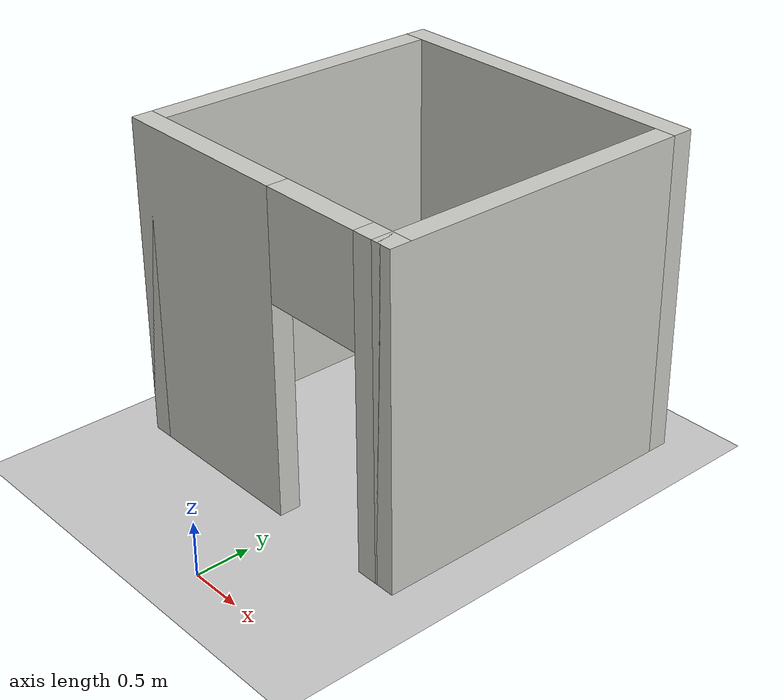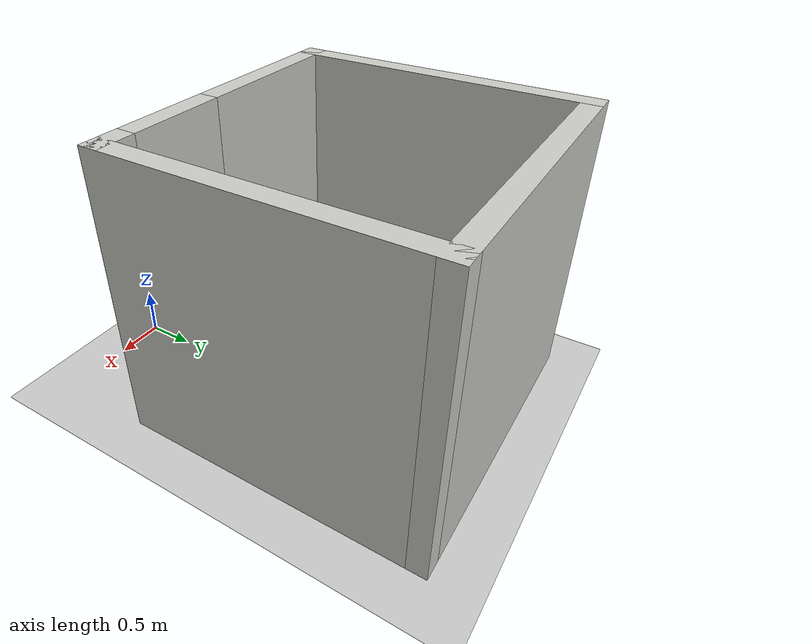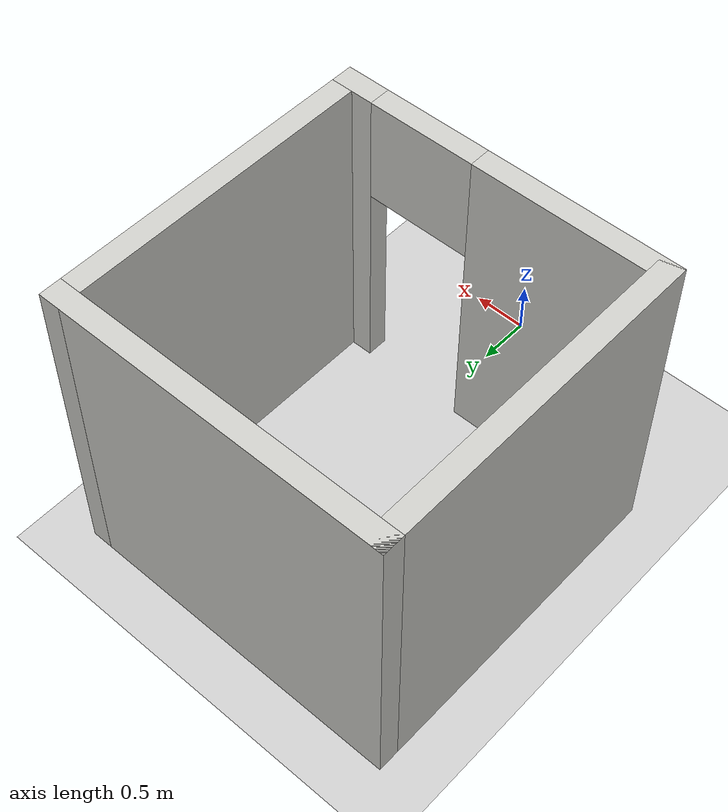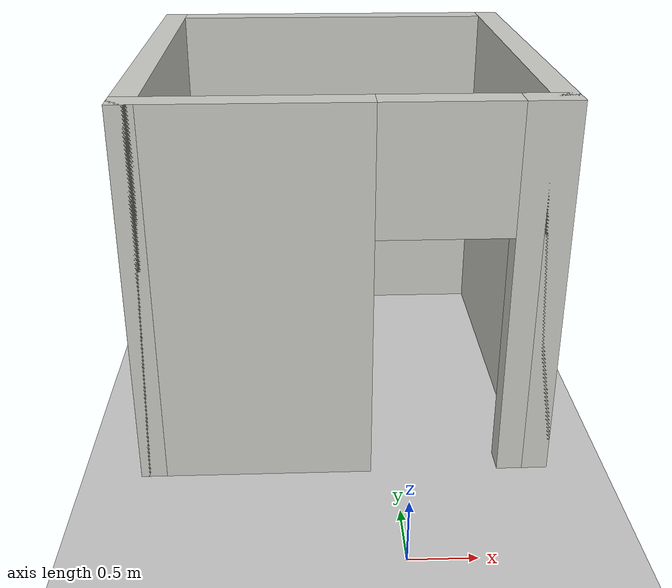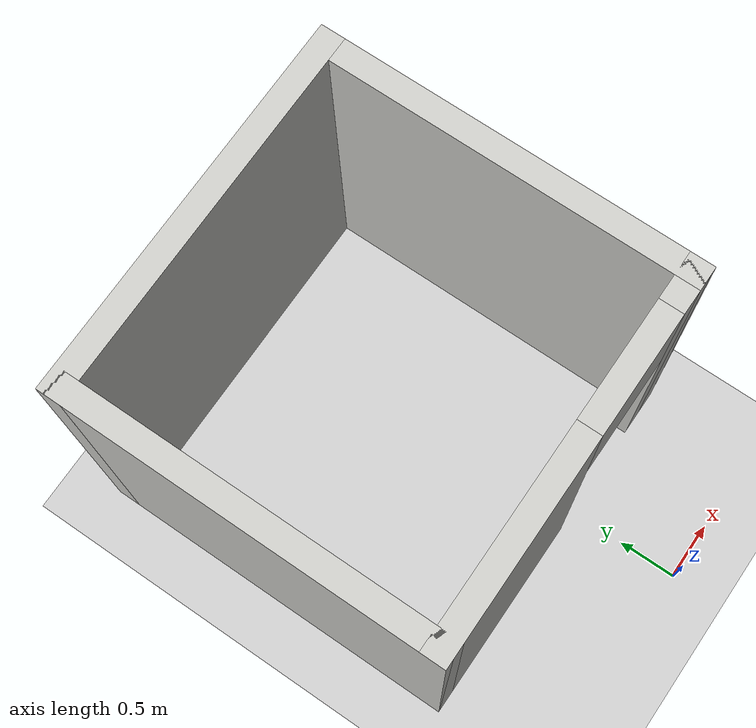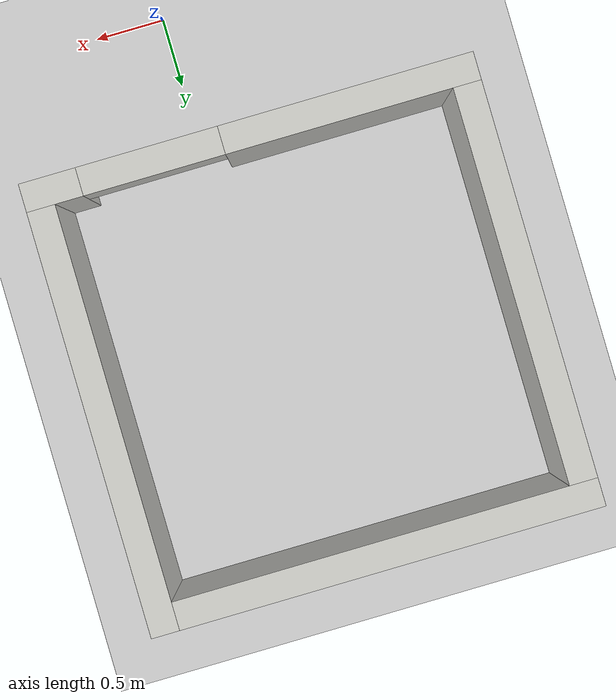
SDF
<sdf version="1.6">
 <world name="default">
  <light name="sun" type="directional">
   <pose>0 0 10 0 -0 0</pose>
   <diffuse>0.8 0.8 0.8 1</diffuse>
   <specular>0.2 0.2 0.2 1</specular>
   <attenuation>
    <range>1000</range>
    <constant>0.9</constant>
    <linear>0.01</linear>
    <quadratic>0.001</quadratic>
   </attenuation>
   <direction>-0.5 0.1 -0.9</direction>
  </light>
  <model name="ground_plane">
   <static>1</static>
   <link name="link">
    <collision name="collision">
     <geometry><plane><normal>0 0 1</normal><size>100 100</size></plane></geometry>
     <surface>
      <contact><collide_bitmask>65535</collide_bitmask></contact>
      <friction><ode><mu>100</mu><mu2>50</mu2></ode></friction>
     </surface>
    </collision>
    <visual name="visual">
     <cast_shadows>0</cast_shadows>
     <geometry><plane><normal>0 0 1</normal><size>100 100</size></plane></geometry>
     <material>
      <script><uri>file://media/materials/scripts/gazebo.material</uri><name>Gazebo/Grey</name></script>
     </material>
    </visual>
   </link>
  </model>
  <gravity>0 0 -9.8</gravity>
  <magnetic_field>6e-06 2.3e-05 -4.2e-05</magnetic_field>
  <atmosphere type="adiabatic"/>
  <physics name="default_physics" default="0" type="ode">
   <max_step_size>0.001</max_step_size>
   <real_time_factor>1</real_time_factor>
   <real_time_update_rate>1000</real_time_update_rate>
  </physics>
  <scene><ambient>0.4 0.4 0.4 1</ambient><background>0.7 0.7 0.7 1</background><shadows>1</shadows></scene>
  <spherical_coordinates>
   <surface_model>EARTH_WGS84</surface_model>
   <latitude_deg>0</latitude_deg>
   <longitude_deg>0</longitude_deg>
   <elevation>0</elevation>
   <heading_deg>0</heading_deg>
  </spherical_coordinates>
  <model name="Untitled">
   <pose>-0.386657 2.57511 0 0 -0 0</pose>
   <link name="Wall_0">
    <pose>0 -1.5 0 0 -0 0</pose>
    <visual name="Wall_0_Visual_0">
     <pose>-0.7 0 1.5 0 -0 0</pose>
     <geometry><box><size>1.8 0.2 3</size></box></geometry>
     <material>
      <script><uri>file://media/materials/scripts/gazebo.material</uri><name>Gazebo/CeilingTiled</name></script>
      <ambient>0.996078 0.47451 0.0196078 1</ambient>
     </material>
     <meta><layer>0</layer></meta>
    </visual>
    <collision name="Wall_0_Collision_0">
     <geometry><box><size>1.8 0.2 3</size></box></geometry>
     <pose>-0.7 0 1.5 0 -0 0</pose>
    </collision>
    <visual name="Wall_0_Visual_1">
     <pose>1.4 0 1.5 0 -0 0</pose>
     <geometry><box><size>0.4 0.2 3</size></box></geometry>
     <material>
      <script><uri>file://media/materials/scripts/gazebo.material</uri><name>Gazebo/CeilingTiled</name></script>
      <ambient>0.996078 0.47451 0.0196078 1</ambient>
     </material>
     <meta><layer>0</layer></meta>
    </visual>
    <collision name="Wall_0_Collision_1">
     <geometry><box><size>0.4 0.2 3</size></box></geometry>
     <pose>1.4 0 1.5 0 -0 0</pose>
    </collision>
    <visual name="Wall_0_Visual_2">
     <pose>0.7 0 2.5 0 -0 0</pose>
     <geometry><box><size>1 0.2 1</size></box></geometry>
     <material>
      <script><uri>file://media/materials/scripts/gazebo.material</uri><name>Gazebo/CeilingTiled</name></script>
      <ambient>0.996078 0.47451 0.0196078 1</ambient>
     </material>
     <meta><layer>0</layer></meta>
    </visual>
    <collision name="Wall_0_Collision_2">
     <geometry><box><size>1 0.2 1</size></box></geometry>
     <pose>0.7 0 2.5 0 -0 0</pose>
    </collision>
   </link>
   <link name="Wall_2">
    <collision name="Wall_2_Collision">
     <geometry><box><size>3.2 0.2 3</size></box></geometry>
     <pose>0 0 1.5 0 -0 0</pose>
    </collision>
    <visual name="Wall_2_Visual">
     <pose>0 0 1.5 0 -0 0</pose>
     <geometry><box><size>3.2 0.2 3</size></box></geometry>
     <material>
      <script><uri>file://media/materials/scripts/gazebo.material</uri><name>Gazebo/CeilingTiled</name></script>
      <ambient>0.996078 0.47451 0.0196078 1</ambient>
     </material>
     <meta><layer>0</layer></meta>
    </visual>
    <pose>1.5 -0 0 0 -0 1.5708</pose>
   </link>
   <link name="Wall_4">
    <collision name="Wall_4_Collision">
     <geometry><box><size>3.2 0.2 3</size></box></geometry>
     <pose>0 0 1.5 0 -0 0</pose>
    </collision>
    <visual name="Wall_4_Visual">
     <pose>0 0 1.5 0 -0 0</pose>
     <geometry><box><size>3.2 0.2 3</size></box></geometry>
     <material>
      <script><uri>file://media/materials/scripts/gazebo.material</uri><name>Gazebo/CeilingTiled</name></script>
      <ambient>0.996078 0.47451 0.0196078 1</ambient>
     </material>
     <meta><layer>0</layer></meta>
    </visual>
    <pose>0 1.5 0 0 -0 3.14159</pose>
   </link>
   <link name="Wall_6">
    <collision name="Wall_6_Collision">
     <geometry><box><size>3.2 0.2 3</size></box></geometry>
     <pose>0 0 1.5 0 -0 0</pose>
    </collision>
    <visual name="Wall_6_Visual">
     <pose>0 0 1.5 0 -0 0</pose>
     <geometry><box><size>3.2 0.2 3</size></box></geometry>
     <material>
      <script><uri>file://media/materials/scripts/gazebo.material</uri><name>Gazebo/CeilingTiled</name></script>
      <ambient>0.996078 0.47451 0.0196078 1</ambient>
     </material>
     <meta><layer>0</layer></meta>
    </visual>
    <pose>-1.5 -0 0 0 -0 -1.5708</pose>
   </link>
   <static>1</static>
  </model>
 </world>
</sdf>
